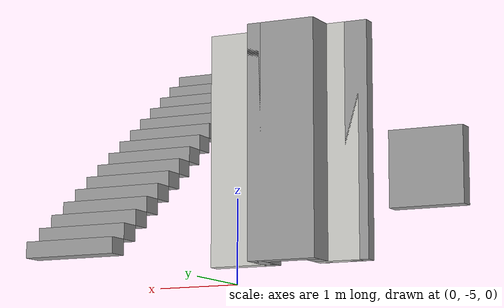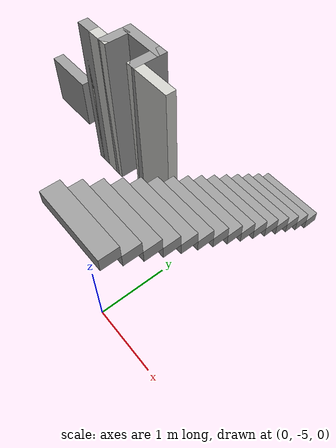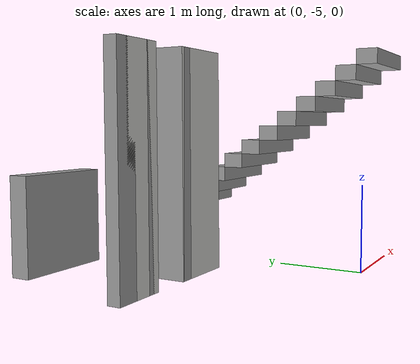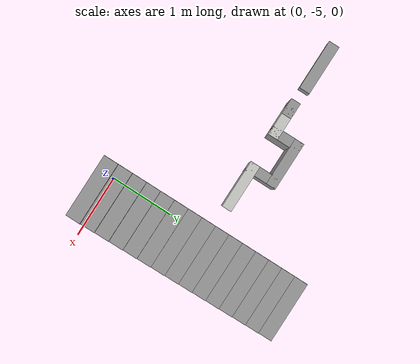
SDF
<?xml version='1.0'?>
<sdf version='1.7'>
  <model name='test'>
    <pose>-0.781879 -2.60988 0 0 -0 0</pose>
    <link name='Stairs_0'>
      <visual name='Stairs_0_Visual_0'>
        <pose>1.04771 0.773452 0.083333 0 -0 0</pose>
        <geometry>
          <box>
            <size>1 0.233333 0.166667</size>
          </box>
        </geometry>
        <material>
          <script>
            <uri>file://media/materials/scripts/gazebo.material</uri>
            <name>Gazebo/Grey</name>
          </script>
          <ambient>1 1 1 1</ambient>
        </material>
        <meta>
          <layer>0</layer>
        </meta>
      </visual>
      <collision name='Stairs_0_Collision_0'>
        <geometry>
          <box>
            <size>1 0.233333 0.166667</size>
          </box>
        </geometry>
        <pose>1.04771 0.773452 0.083333 0 -0 0</pose>
      </collision>
      <visual name='Stairs_0_Visual_1'>
        <pose>1.04771 0.540118 0.25 0 -0 0</pose>
        <geometry>
          <box>
            <size>1 0.233333 0.166667</size>
          </box>
        </geometry>
        <material>
          <script>
            <uri>file://media/materials/scripts/gazebo.material</uri>
            <name>Gazebo/Grey</name>
          </script>
          <ambient>1 1 1 1</ambient>
        </material>
        <meta>
          <layer>0</layer>
        </meta>
      </visual>
      <collision name='Stairs_0_Collision_1'>
        <geometry>
          <box>
            <size>1 0.233333 0.166667</size>
          </box>
        </geometry>
        <pose>1.04771 0.540118 0.25 0 -0 0</pose>
      </collision>
      <visual name='Stairs_0_Visual_2'>
        <pose>1.04771 0.306785 0.416667 0 -0 0</pose>
        <geometry>
          <box>
            <size>1 0.233333 0.166667</size>
          </box>
        </geometry>
        <material>
          <script>
            <uri>file://media/materials/scripts/gazebo.material</uri>
            <name>Gazebo/Grey</name>
          </script>
          <ambient>1 1 1 1</ambient>
        </material>
        <meta>
          <layer>0</layer>
        </meta>
      </visual>
      <collision name='Stairs_0_Collision_2'>
        <geometry>
          <box>
            <size>1 0.233333 0.166667</size>
          </box>
        </geometry>
        <pose>1.04771 0.306785 0.416667 0 -0 0</pose>
      </collision>
      <visual name='Stairs_0_Visual_3'>
        <pose>1.04771 0.073452 0.583333 0 -0 0</pose>
        <geometry>
          <box>
            <size>1 0.233333 0.166667</size>
          </box>
        </geometry>
        <material>
          <script>
            <uri>file://media/materials/scripts/gazebo.material</uri>
            <name>Gazebo/Grey</name>
          </script>
          <ambient>1 1 1 1</ambient>
        </material>
        <meta>
          <layer>0</layer>
        </meta>
      </visual>
      <collision name='Stairs_0_Collision_3'>
        <geometry>
          <box>
            <size>1 0.233333 0.166667</size>
          </box>
        </geometry>
        <pose>1.04771 0.073452 0.583333 0 -0 0</pose>
      </collision>
      <visual name='Stairs_0_Visual_4'>
        <pose>1.04771 -0.159882 0.75 0 -0 0</pose>
        <geometry>
          <box>
            <size>1 0.233333 0.166667</size>
          </box>
        </geometry>
        <material>
          <script>
            <uri>file://media/materials/scripts/gazebo.material</uri>
            <name>Gazebo/Grey</name>
          </script>
          <ambient>1 1 1 1</ambient>
        </material>
        <meta>
          <layer>0</layer>
        </meta>
      </visual>
      <collision name='Stairs_0_Collision_4'>
        <geometry>
          <box>
            <size>1 0.233333 0.166667</size>
          </box>
        </geometry>
        <pose>1.04771 -0.159882 0.75 0 -0 0</pose>
      </collision>
      <visual name='Stairs_0_Visual_5'>
        <pose>1.04771 -0.393215 0.916667 0 -0 0</pose>
        <geometry>
          <box>
            <size>1 0.233333 0.166667</size>
          </box>
        </geometry>
        <material>
          <script>
            <uri>file://media/materials/scripts/gazebo.material</uri>
            <name>Gazebo/Grey</name>
          </script>
          <ambient>1 1 1 1</ambient>
        </material>
        <meta>
          <layer>0</layer>
        </meta>
      </visual>
      <collision name='Stairs_0_Collision_5'>
        <geometry>
          <box>
            <size>1 0.233333 0.166667</size>
          </box>
        </geometry>
        <pose>1.04771 -0.393215 0.916667 0 -0 0</pose>
      </collision>
      <visual name='Stairs_0_Visual_6'>
        <pose>1.04771 -0.626548 1.08333 0 -0 0</pose>
        <geometry>
          <box>
            <size>1 0.233333 0.166667</size>
          </box>
        </geometry>
        <material>
          <script>
            <uri>file://media/materials/scripts/gazebo.material</uri>
            <name>Gazebo/Grey</name>
          </script>
          <ambient>1 1 1 1</ambient>
        </material>
        <meta>
          <layer>0</layer>
        </meta>
      </visual>
      <collision name='Stairs_0_Collision_6'>
        <geometry>
          <box>
            <size>1 0.233333 0.166667</size>
          </box>
        </geometry>
        <pose>1.04771 -0.626548 1.08333 0 -0 0</pose>
      </collision>
      <visual name='Stairs_0_Visual_7'>
        <pose>1.04771 -0.859882 1.25 0 -0 0</pose>
        <geometry>
          <box>
            <size>1 0.233333 0.166667</size>
          </box>
        </geometry>
        <material>
          <script>
            <uri>file://media/materials/scripts/gazebo.material</uri>
            <name>Gazebo/Grey</name>
          </script>
          <ambient>1 1 1 1</ambient>
        </material>
        <meta>
          <layer>0</layer>
        </meta>
      </visual>
      <collision name='Stairs_0_Collision_7'>
        <geometry>
          <box>
            <size>1 0.233333 0.166667</size>
          </box>
        </geometry>
        <pose>1.04771 -0.859882 1.25 0 -0 0</pose>
      </collision>
      <visual name='Stairs_0_Visual_8'>
        <pose>1.04771 -1.09322 1.41667 0 -0 0</pose>
        <geometry>
          <box>
            <size>1 0.233333 0.166667</size>
          </box>
        </geometry>
        <material>
          <script>
            <uri>file://media/materials/scripts/gazebo.material</uri>
            <name>Gazebo/Grey</name>
          </script>
          <ambient>1 1 1 1</ambient>
        </material>
        <meta>
          <layer>0</layer>
        </meta>
      </visual>
      <collision name='Stairs_0_Collision_8'>
        <geometry>
          <box>
            <size>1 0.233333 0.166667</size>
          </box>
        </geometry>
        <pose>1.04771 -1.09322 1.41667 0 -0 0</pose>
      </collision>
      <visual name='Stairs_0_Visual_9'>
        <pose>1.04771 -1.32655 1.58333 0 -0 0</pose>
        <geometry>
          <box>
            <size>1 0.233333 0.166667</size>
          </box>
        </geometry>
        <material>
          <script>
            <uri>file://media/materials/scripts/gazebo.material</uri>
            <name>Gazebo/Grey</name>
          </script>
          <ambient>1 1 1 1</ambient>
        </material>
        <meta>
          <layer>0</layer>
        </meta>
      </visual>
      <collision name='Stairs_0_Collision_9'>
        <geometry>
          <box>
            <size>1 0.233333 0.166667</size>
          </box>
        </geometry>
        <pose>1.04771 -1.32655 1.58333 0 -0 0</pose>
      </collision>
      <visual name='Stairs_0_Visual_10'>
        <pose>1.04771 -1.55988 1.75 0 -0 0</pose>
        <geometry>
          <box>
            <size>1 0.233333 0.166667</size>
          </box>
        </geometry>
        <material>
          <script>
            <uri>file://media/materials/scripts/gazebo.material</uri>
            <name>Gazebo/Grey</name>
          </script>
          <ambient>1 1 1 1</ambient>
        </material>
        <meta>
          <layer>0</layer>
        </meta>
      </visual>
      <collision name='Stairs_0_Collision_10'>
        <geometry>
          <box>
            <size>1 0.233333 0.166667</size>
          </box>
        </geometry>
        <pose>1.04771 -1.55988 1.75 0 -0 0</pose>
      </collision>
      <visual name='Stairs_0_Visual_11'>
        <pose>1.04771 -1.79322 1.91667 0 -0 0</pose>
        <geometry>
          <box>
            <size>1 0.233333 0.166667</size>
          </box>
        </geometry>
        <material>
          <script>
            <uri>file://media/materials/scripts/gazebo.material</uri>
            <name>Gazebo/Grey</name>
          </script>
          <ambient>1 1 1 1</ambient>
        </material>
        <meta>
          <layer>0</layer>
        </meta>
      </visual>
      <collision name='Stairs_0_Collision_11'>
        <geometry>
          <box>
            <size>1 0.233333 0.166667</size>
          </box>
        </geometry>
        <pose>1.04771 -1.79322 1.91667 0 -0 0</pose>
      </collision>
      <visual name='Stairs_0_Visual_12'>
        <pose>1.04771 -2.02655 2.08333 0 -0 0</pose>
        <geometry>
          <box>
            <size>1 0.233333 0.166667</size>
          </box>
        </geometry>
        <material>
          <script>
            <uri>file://media/materials/scripts/gazebo.material</uri>
            <name>Gazebo/Grey</name>
          </script>
          <ambient>1 1 1 1</ambient>
        </material>
        <meta>
          <layer>0</layer>
        </meta>
      </visual>
      <collision name='Stairs_0_Collision_12'>
        <geometry>
          <box>
            <size>1 0.233333 0.166667</size>
          </box>
        </geometry>
        <pose>1.04771 -2.02655 2.08333 0 -0 0</pose>
      </collision>
      <visual name='Stairs_0_Visual_13'>
        <pose>1.04771 -2.25988 2.25 0 -0 0</pose>
        <geometry>
          <box>
            <size>1 0.233333 0.166667</size>
          </box>
        </geometry>
        <material>
          <script>
            <uri>file://media/materials/scripts/gazebo.material</uri>
            <name>Gazebo/Grey</name>
          </script>
          <ambient>1 1 1 1</ambient>
        </material>
        <meta>
          <layer>0</layer>
        </meta>
      </visual>
      <collision name='Stairs_0_Collision_13'>
        <geometry>
          <box>
            <size>1 0.233333 0.166667</size>
          </box>
        </geometry>
        <pose>1.04771 -2.25988 2.25 0 -0 0</pose>
      </collision>
      <visual name='Stairs_0_Visual_14'>
        <pose>1.04771 -2.49322 2.41667 0 -0 0</pose>
        <geometry>
          <box>
            <size>1 0.233333 0.166667</size>
          </box>
        </geometry>
        <material>
          <script>
            <uri>file://media/materials/scripts/gazebo.material</uri>
            <name>Gazebo/Grey</name>
          </script>
          <ambient>1 1 1 1</ambient>
        </material>
        <meta>
          <layer>0</layer>
        </meta>
      </visual>
      <collision name='Stairs_0_Collision_14'>
        <geometry>
          <box>
            <size>1 0.233333 0.166667</size>
          </box>
        </geometry>
        <pose>1.04771 -2.49322 2.41667 0 -0 0</pose>
      </collision>
    </link>
    <link name='Wall_0'>
      <collision name='Wall_0_Collision'>
        <geometry>
          <box>
            <size>0.25 0.15 2.5</size>
          </box>
        </geometry>
        <pose>0 0 1.25 0 -0 0</pose>
      </collision>
      <visual name='Wall_0_Visual'>
        <pose>0 0 1.25 0 -0 0</pose>
        <geometry>
          <box>
            <size>0.25 0.15 2.5</size>
          </box>
        </geometry>
        <material>
          <script>
            <uri>file://media/materials/scripts/gazebo.material</uri>
            <name>Gazebo/Grey</name>
          </script>
          <ambient>1 1 1 1</ambient>
        </material>
        <meta>
          <layer>0</layer>
        </meta>
      </visual>
      <pose>-1.42271 -0.755273 0 0 -0 0</pose>
    </link>
    <link name='Wall_1'>
      <collision name='Wall_1_Collision'>
        <geometry>
          <box>
            <size>0.5 0.15 2.5</size>
          </box>
        </geometry>
        <pose>0 0 1.25 0 -0 0</pose>
      </collision>
      <visual name='Wall_1_Visual'>
        <pose>0 0 1.25 0 -0 0</pose>
        <geometry>
          <box>
            <size>0.5 0.15 2.5</size>
          </box>
        </geometry>
        <material>
          <script>
            <uri>file://media/materials/scripts/gazebo.material</uri>
            <name>Gazebo/CeilingTiled</name>
          </script>
          <ambient>1 1 1 1</ambient>
        </material>
        <meta>
          <layer>0</layer>
        </meta>
      </visual>
      <pose>-1.19771 -0.755273 0 0 -0 0</pose>
    </link>
    <link name='Wall_2'>
      <collision name='Wall_2_Collision'>
        <geometry>
          <box>
            <size>0.5 0.15 2.5</size>
          </box>
        </geometry>
        <pose>0 0 1.25 0 -0 0</pose>
      </collision>
      <visual name='Wall_2_Visual'>
        <pose>0 0 1.25 0 -0 0</pose>
        <geometry>
          <box>
            <size>0.5 0.15 2.5</size>
          </box>
        </geometry>
        <material>
          <script>
            <uri>file://media/materials/scripts/gazebo.material</uri>
            <name>Gazebo/Grey</name>
          </script>
          <ambient>1 1 1 1</ambient>
        </material>
        <meta>
          <layer>0</layer>
        </meta>
      </visual>
      <pose>-1.02271 -0.580273 0 0 -0 1.5708</pose>
    </link>
    <link name='Wall_3'>
      <collision name='Wall_3_Collision'>
        <geometry>
          <box>
            <size>0.75 0.15 2.5</size>
          </box>
        </geometry>
        <pose>0 0 1.25 0 -0 0</pose>
      </collision>
      <visual name='Wall_3_Visual'>
        <pose>0 0 1.25 0 -0 0</pose>
        <geometry>
          <box>
            <size>0.75 0.15 2.5</size>
          </box>
        </geometry>
        <material>
          <script>
            <uri>file://media/materials/scripts/gazebo.material</uri>
            <name>Gazebo/Grey</name>
          </script>
          <ambient>1 1 1 1</ambient>
        </material>
        <meta>
          <layer>0</layer>
        </meta>
      </visual>
      <pose>-0.722706 -0.405273 0 0 -0 0</pose>
    </link>
    <link name='Wall_4'>
      <collision name='Wall_4_Collision'>
        <geometry>
          <box>
            <size>0.5 0.15 2.5</size>
          </box>
        </geometry>
        <pose>0 0 1.25 0 -0 0</pose>
      </collision>
      <visual name='Wall_4_Visual'>
        <pose>0 0 1.25 0 -0 0</pose>
        <geometry>
          <box>
            <size>0.5 0.15 2.5</size>
          </box>
        </geometry>
        <material>
          <script>
            <uri>file://media/materials/scripts/gazebo.material</uri>
            <name>Gazebo/Grey</name>
          </script>
          <ambient>1 1 1 1</ambient>
        </material>
        <meta>
          <layer>0</layer>
        </meta>
      </visual>
      <pose>-0.422706 -0.580273 0 0 -0 -1.5708</pose>
    </link>
    <link name='Wall_5'>
      <collision name='Wall_5_Collision'>
        <geometry>
          <box>
            <size>0.75 0.15 2.5</size>
          </box>
        </geometry>
        <pose>0 0 1.25 0 -0 0</pose>
      </collision>
      <visual name='Wall_5_Visual'>
        <pose>0 0 1.25 0 -0 0</pose>
        <geometry>
          <box>
            <size>0.75 0.15 2.5</size>
          </box>
        </geometry>
        <material>
          <script>
            <uri>file://media/materials/scripts/gazebo.material</uri>
            <name>Gazebo/CeilingTiled</name>
          </script>
          <ambient>1 1 1 1</ambient>
        </material>
        <meta>
          <layer>0</layer>
        </meta>
      </visual>
      <pose>-0.122706 -0.755273 0 0 -0 0</pose>
    </link>
    <link name='Window_0'>
      <collision name='Window_0_Collision'>
        <geometry>
          <box>
            <size>0.8 0.17 0.8</size>
          </box>
        </geometry>
        <pose>0 0 0.4 0 -0 0</pose>
      </collision>
      <visual name='Window_0_Visual'>
        <pose>0 0 0.4 0 -0 0</pose>
        <geometry>
          <box>
            <size>0.8 0.17 0.8</size>
          </box>
        </geometry>
        <material>
          <script>
            <uri>file://media/materials/scripts/gazebo.material</uri>
            <name>Gazebo/Grey</name>
          </script>
        </material>
      </visual>
      <pose>-2.19516 -0.722583 0.5 0 -0 0</pose>
    </link>
    <static>1</static>
  </model>
</sdf>
